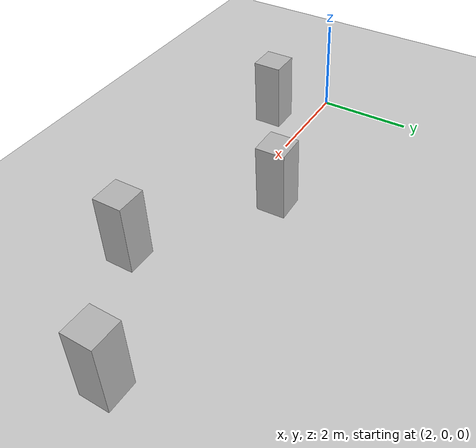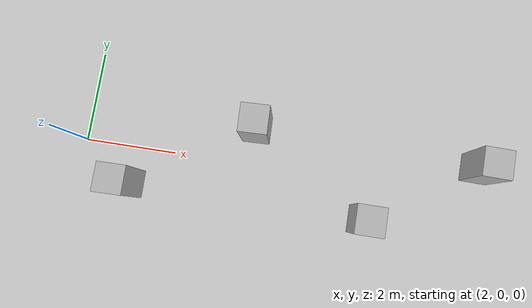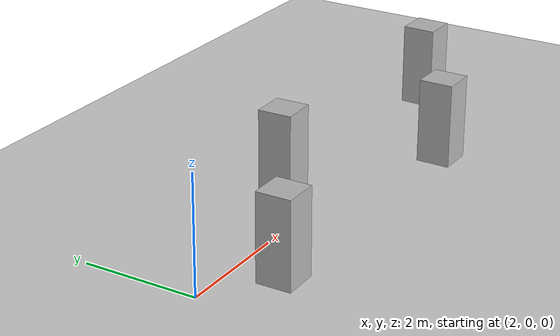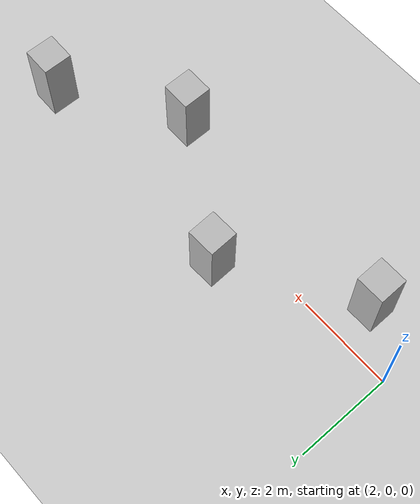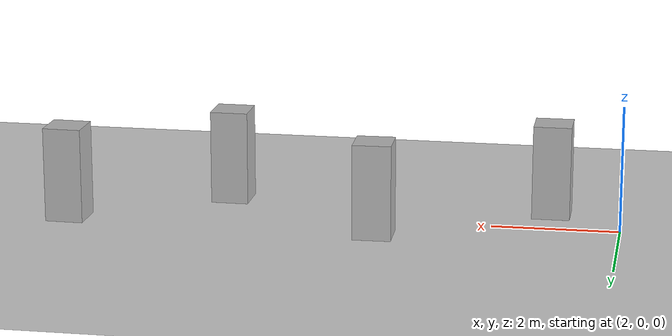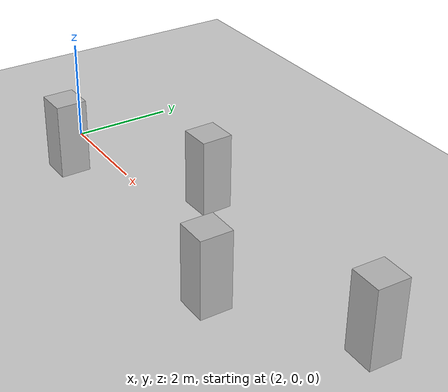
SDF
<?xml version="1.0"?>
<sdf version="1.6">
  <world name="v2-04e4-static-s4733">
    <gravity>0 0 -9.81</gravity>
    <physics name="v2_deterministic" type="ode">
      <max_step_size>0.002</max_step_size>
      <real_time_update_rate>500</real_time_update_rate>
    </physics>
    <include>
      <uri>model://sun</uri>
    </include>
    <include>
      <uri>model://ground_plane</uri>
    </include>
    <model name="pillar-1">
      <static>true</static>
      <pose>3.123877133 -0.807932637 0.750000000 0 0 0.007190690</pose>
      <link name="link">
        <collision name="collision">
          <geometry>
            <box>
              <size>0.600000 0.600000 1.500000</size>
            </box>
          </geometry>
        </collision>
        <visual name="visual">
          <geometry>
            <box>
              <size>0.600000 0.600000 1.500000</size>
            </box>
          </geometry>
        </visual>
      </link>
    </model>
    <model name="pillar-2">
      <static>true</static>
      <pose>5.746016560 0.790382665 0.750000000 0 0 0.027367974</pose>
      <link name="link">
        <collision name="collision">
          <geometry>
            <box>
              <size>0.600000 0.600000 1.500000</size>
            </box>
          </geometry>
        </collision>
        <visual name="visual">
          <geometry>
            <box>
              <size>0.600000 0.600000 1.500000</size>
            </box>
          </geometry>
        </visual>
      </link>
    </model>
    <model name="pillar-3">
      <static>true</static>
      <pose>8.313160688 -0.862770772 0.750000000 0 0 -0.006480489</pose>
      <link name="link">
        <collision name="collision">
          <geometry>
            <box>
              <size>0.600000 0.600000 1.500000</size>
            </box>
          </geometry>
        </collision>
        <visual name="visual">
          <geometry>
            <box>
              <size>0.600000 0.600000 1.500000</size>
            </box>
          </geometry>
        </visual>
      </link>
    </model>
    <model name="pillar-4">
      <static>true</static>
      <pose>10.654511144 0.623373255 0.750000000 0 0 -0.024119307</pose>
      <link name="link">
        <collision name="collision">
          <geometry>
            <box>
              <size>0.600000 0.600000 1.500000</size>
            </box>
          </geometry>
        </collision>
        <visual name="visual">
          <geometry>
            <box>
              <size>0.600000 0.600000 1.500000</size>
            </box>
          </geometry>
        </visual>
      </link>
    </model>
  </world>
</sdf>
